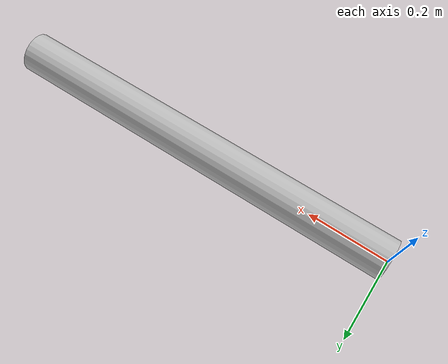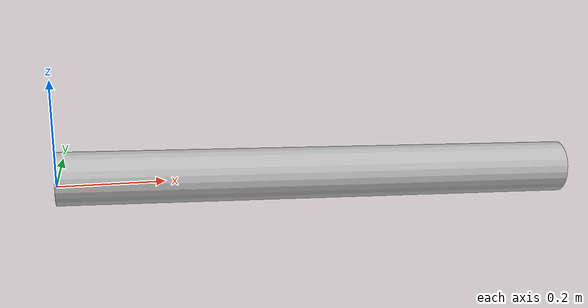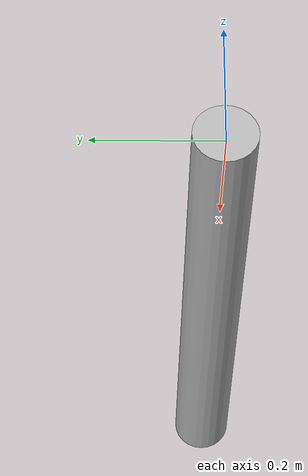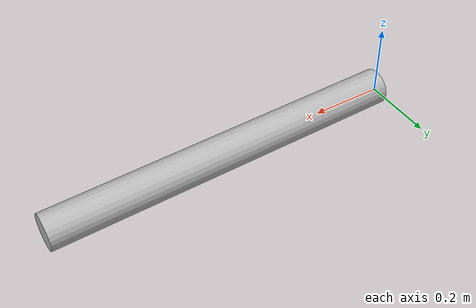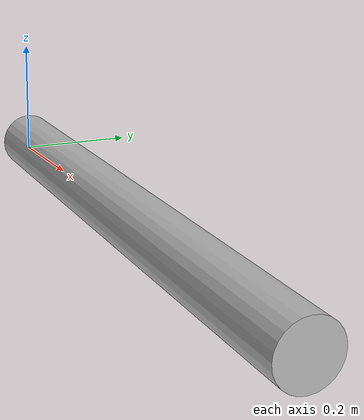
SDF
<?xml version='1.0'?>
<sdf version='1.9'>
    <model name="PRR_planar">
        <static>false</static>

        <link name="l1">
            <pose>0.25 0 0 0 0 0</pose>
            <collision name="l1_collision">
                <geometry>
                    <cylinder>
                        <radius>0.05</radius>
                        <length>0.5</length>
                    </cylinder>
                </geometry>
            </collision>
           <visual name="case 1">
                <pose>0.25 0 0 0 1.6 0</pose>

                <geometry>
                    <cylinder>
                        <radius>0.05</radius>
                        <length>1</length>
                    </cylinder>
                </geometry>

           </visual>
        </link>

    </model>
</sdf>
